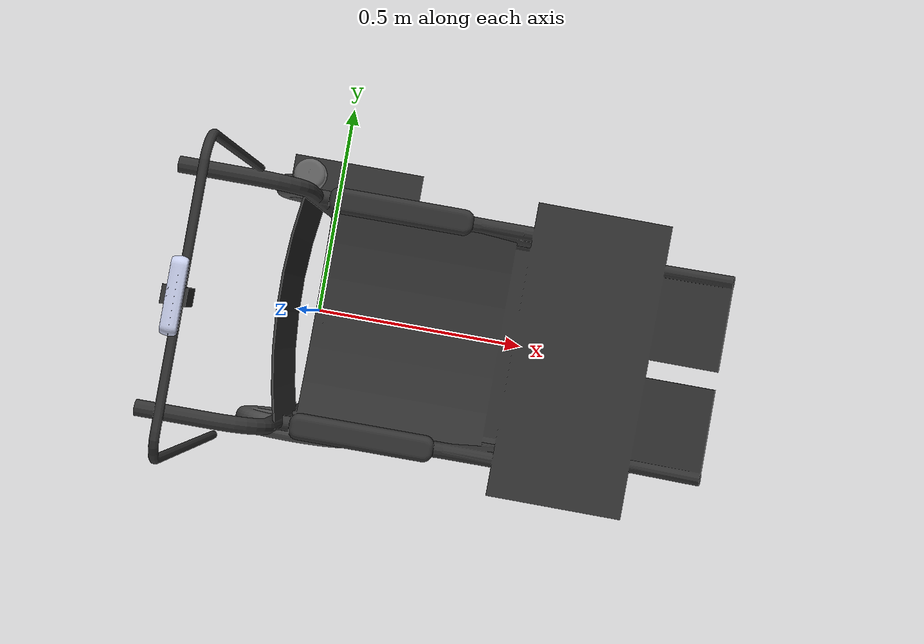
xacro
<?xml version="1.0"?>
<robot name="turtlebot3_burger" xmlns:xacro="http://ros.org/wiki/xacro">
  <xacro:include filename="$(find wheel_chair)/urdf/wheel_chair.gazebo.xacro" />

  <link
    name="base_link">
    <inertial>
      <origin
        xyz="0.367710115990865 0.00427594055759772 0.222806503300556"
        rpy="0 0 0" />
      <mass
        value="104.238834662291" />
      <inertia
        ixx="4.71175664250457"
        ixy="0.0385230868676068"
        ixz="1.0740814957226"
        iyy="7.70372211875449"
        iyz="0.0449177005185298"
        izz="4.26521836376027" />
    </inertial>
    <visual>
      <origin
        xyz="0 0 0"
        rpy="0 0 0" />
      <geometry>
        <mesh
          filename="package://wheel_chair/meshes/base_link.STL" />
      </geometry>
      <material
        name="">
        <color
          rgba="0.2 0.2 0.2 1" />
      </material>
    </visual>
    <collision>
      <origin
        xyz="0 0 0"
        rpy="0 0 0" />
      <geometry>
        <mesh
          filename="package://wheel_chair/meshes/base_link.STL" />
      </geometry>
    </collision>
  </link>

  <joint name="imu_joint" type="fixed">
    <parent link="base_link"/>
    <child link="imu_link"/>
    <origin xyz="-0.032 0 0.068" rpy="0 0 0"/>
  </joint>

  <link name="imu_link"/>

  <link
    name="left_big_wheel">
    <inertial>
      <origin
        xyz="8.32667268468867E-17 -0.0275 9.43689570931383E-16"
        rpy="0 0 0" />
      <mass
        value="3.19005851775017" />
      <inertia
        ixx="0.0222055020892376"
        ixy="2.73068863816006E-19"
        ixz="-2.79570503430672E-17"
        iyy="0.0429444812918596"
        iyz="-3.90098376880016E-20"
        izz="0.0222055020892377" />
    </inertial>
    <visual>
      <origin
        xyz="0 0 0"
        rpy="0 0 0" />
      <geometry>
        <mesh
          filename="package://wheel_chair/meshes/left_big_wheel.STL" />
      </geometry>
      <material
        name="">
        <color
          rgba="0.298039215686275 0.298039215686275 0.298039215686275 1" />
      </material>
    </visual>
    <collision>
      <origin
        xyz="0 0 0"
        rpy="0 0 0" />
      <geometry>
        <mesh
          filename="package://wheel_chair/meshes/left_big_wheel.STL" />
      </geometry>
    </collision>
  </link>
  <joint
    name="left_big_wheel_joint"
    type="continuous">
    <origin
      xyz="0 0.315 0"
      rpy="0 0 0" />
    <parent
      link="base_link" />
    <child
      link="left_big_wheel" />
    <axis
      xyz="0 -1 0" />
    <limit
      effort="1"
      velocity="1" />
  </joint>
  <link
    name="right_big_wheel">
    <inertial>
      <origin
        xyz="1.60982338570648E-15 0.0275 1.11022302462516E-15"
        rpy="0 0 0" />
      <mass
        value="3.19005851775018" />
      <inertia
        ixx="0.0222055020892377"
        ixy="-5.02793463534266E-19"
        ixz="-1.06280135567754E-17"
        iyy="0.0429444812918596"
        iyz="1.34367218703133E-19"
        izz="0.0222055020892377" />
    </inertial>
    <visual>
      <origin
        xyz="0 0 0"
        rpy="0 0 0" />
      <geometry>
        <mesh
          filename="package://wheel_chair/meshes/right_big_wheel.STL" />
      </geometry>
      <material
        name="">
        <color
          rgba="0.298039215686275 0.298039215686275 0.298039215686275 1" />
      </material>
    </visual>
    <collision>
      <origin
        xyz="0 0 0"
        rpy="0 0 0" />
      <geometry>
        <mesh
          filename="package://wheel_chair/meshes/right_big_wheel.STL" />
      </geometry>
    </collision>
  </link>
  <joint
    name="right_big_wheel_joint"
    type="continuous">
    <origin
      xyz="0 -0.315 0"
      rpy="0 0 0" />
    <parent
      link="base_link" />
    <child
      link="right_big_wheel" />
    <axis
      xyz="0 -1 0" />
    <limit
      effort="1"
      velocity="1" />
  </joint>
  <link
    name="left_small_wheel">
    <inertial>
      <origin
        xyz="-7.21644966006352E-16 -0.0400000000000002 0"
        rpy="0 0 0" />
      <mass
        value="1.31881639542862" />
      <inertia
        ixx="0.00307756206748821"
        ixy="-4.86196911723968E-19"
        ixz="1.29760768970133E-20"
        iyy="0.00569232821091254"
        iyz="1.99882167723138E-20"
        izz="0.00307756206748821" />
    </inertial>
    <visual>
      <origin
        xyz="0 0 0"
        rpy="0 0 0" />
      <geometry>
        <mesh
          filename="package://wheel_chair/meshes/left_small_wheel.STL" />
      </geometry>
      <material
        name="">
        <color
          rgba="0.298039215686275 0.298039215686275 0.298039215686275 1" />
      </material>
    </visual>
    <collision>
      <origin
        xyz="0 0 0"
        rpy="0 0 0" />
      <geometry>
        <mesh
          filename="package://wheel_chair/meshes/left_small_wheel.STL" />
      </geometry>
    </collision>
  </link>
  <joint
    name="left_small_wheel_joint"
    type="revolute">
    <origin
      xyz="0.64005 0.2835 -0.065"
      rpy="0 0 -0.0013615" />
    <parent
      link="base_link" />
    <child
      link="left_small_wheel" />
    <axis
      xyz="-0.0019131 1 0" />
    <limit
      lower="0"
      upper="0"
      effort="0"
      velocity="0" />
  </joint>
  <link
    name="right_smaal_wheel">
    <inertial>
      <origin
        xyz="0.000198873647039965 0.0399995056128514 2.22044604925031E-15"
        rpy="0 0 0" />
      <mass
        value="1.31881639542862" />
      <inertia
        ixx="0.00307762670242769"
        ixy="1.30000412990577E-05"
        ixz="-3.05847536861125E-19"
        iyy="0.00569226357597306"
        iyz="8.08608700453136E-20"
        izz="0.00307756206748821" />
    </inertial>
    <visual>
      <origin
        xyz="0 0 0"
        rpy="0 0 0" />
      <geometry>
        <mesh
          filename="package://wheel_chair/meshes/right_smaal_wheel.STL" />
      </geometry>
      <material
        name="">
        <color
          rgba="0.298039215686275 0.298039215686275 0.298039215686275 1" />
      </material>
    </visual>
    <collision>
      <origin
        xyz="0 0 0"
        rpy="0 0 0" />
      <geometry>
        <mesh
          filename="package://wheel_chair/meshes/right_smaal_wheel.STL" />
      </geometry>
    </collision>
  </link>
  <joint
    name="right_small_wheel_joint"
    type="revolute">
    <origin
      xyz="0.6398 -0.2835 -0.065"
      rpy="0 0 0" />
    <parent
      link="base_link" />
    <child
      link="right_smaal_wheel" />
    <axis
      xyz="0.0043627 0.99999 0" />
    <limit
      lower="0"
      upper="0"
      effort="0"
      velocity="0" />
  </joint>
  <link
    name="rp_laser_back">
    <inertial>
      <origin
        xyz="-0.00393393719392465 1.45541326387055E-05 -0.00550433759472346"
        rpy="0 0 0" />
      <mass
        value="0.165382757413928" />
      <inertia
        ixx="7.88186497400901E-05"
        ixy="4.81327415297136E-08"
        ixz="-1.82339073198479E-06"
        iyy="7.51902892774038E-05"
        iyz="-2.9420939238945E-08"
        izz="0.000109993288450695" />
    </inertial>
    <visual>
      <origin
        xyz="0 0 0"
        rpy="0 0 0" />
      <geometry>
        <mesh
          filename="package://wheel_chair/meshes/rp_laser_back.STL" />
      </geometry>
      <material
        name="">
        <color
          rgba="0.752941176470588 0.752941176470588 0.752941176470588 0.4" />
      </material>
    </visual>
    <collision>
      <origin
        xyz="0 0 0"
        rpy="0 0 0" />
      <geometry>
        <mesh
          filename="package://wheel_chair/meshes/rp_laser_back.STL" />
      </geometry>
    </collision>
  </link>
  <joint
    name="rp_laser_back_joint"
    type="fixed">
    <origin
      xyz="-0.048279 0.305 0.26099"
      rpy="0 0 -0.4" />
    <parent
      link="base_link" />
    <child
      link="rp_laser_back" />
    <axis
      xyz="0 0 0" />
  </joint>
  <link
    name="rp_laser_front">
    <inertial>
      <origin
        xyz="0.00386881875434386 8.69539989361567E-05 -0.00554963797433417"
        rpy="0 0 0" />
      <mass
        value="0.165382751635991" />
      <inertia
        ixx="7.88601133328312E-05"
        ixy="1.44763696263324E-07"
        ixz="2.18328573965282E-06"
        iyy="7.51953617715746E-05"
        iyz="8.61570136662877E-08"
        izz="0.000109946753058707" />
    </inertial>
    <visual>
      <origin
        xyz="0 0 0"
        rpy="0 0 0" />
      <geometry>
        <mesh
          filename="package://wheel_chair/meshes/rp_laser_front.STL" />
      </geometry>
      <material
        name="">
        <color
          rgba="0.752941176470588 0.752941176470588 0.752941176470588 0.4" />
      </material>
    </visual>
    <collision>
      <origin
        xyz="0 0 0"
        rpy="0 0 0" />
      <geometry>
        <mesh
          filename="package://wheel_chair/meshes/rp_laser_front.STL" />
      </geometry>
    </collision>
  </link>
  <joint
    name="rp_laser_front_joint"
    type="fixed">
    <origin
      xyz="0.72155 0.0046595 -0.074152"
      rpy="0 0 -0.0013615" />
    <parent
      link="base_link" />
    <child
      link="rp_laser_front" />
    <axis
      xyz="0 0 0" />
  </joint>
  <link
    name="camera_link">
    <inertial>
      <origin
        xyz="-0.0128303971236894 0.00026345822416235 0.00120890752799729"
        rpy="0 0 0" />
      <mass
        value="0.0247927922484064" />
      <inertia
        ixx="3.56506588599453E-05"
        ixy="-1.15721449744488E-08"
        ixz="-1.82266916058428E-07"
        iyy="2.84011177762109E-06"
        iyz="2.78716575004723E-08"
        izz="3.35091990190486E-05" />
    </inertial>
    <visual>
      <origin
        xyz="0 0 0"
        rpy="0 0 0" />
      <geometry>
        <mesh
          filename="package://wheel_chair/meshes/camera.STL" />
      </geometry>
      <material
        name="">
        <color
          rgba="0.792156862745098 0.819607843137255 0.933333333333333 1" />
      </material>
    </visual>
    <collision>
      <origin
        xyz="0 0 0"
        rpy="0 0 0" />
      <geometry>
        <mesh
          filename="package://wheel_chair/meshes/camera.STL" />
      </geometry>
    </collision>
  </link>
  <joint
    name="camera_joint"
    type="fixed">
    <origin
      xyz="-0.066986 -0.0039691 1.5345"
      rpy="0 0 0" />
    <parent
      link="base_link" />
    <child
      link="camera_link" />
    <axis
      xyz="0 0 0" />
    <limit
      lower="0"
      upper="0"
      effort="0"
      velocity="0" />
  </joint>

  <joint name="camera_depth_joint" type="fixed">
    <origin xyz="0 0 0" rpy="0 0 0" />
    <parent link="camera_link" />
    <child link="camera_depth_frame" />
  </joint>
  <link name="camera_depth_frame" />

  <joint name="camera_depth_optical_joint" type="fixed">
    <origin xyz="0 0 0" rpy="-1.57079632679 0 -1.57079632679" />
    <parent link="camera_depth_frame" />
    <child link="camera_depth_optical_frame" />
  </joint>
  <link name="camera_depth_optical_frame" />

  <!-- camera left IR joints and links -->
  <joint name="camera_infra1_joint" type="fixed">
    <origin xyz="0 0 0" rpy="0 0 0" />
    <parent link="camera_link" />
    <child link="camera_infra1_frame" />
  </joint>
  <link name="camera_infra1_frame" />

  <joint name="camera_infra1_optical_joint" type="fixed">
    <origin xyz="0 0 0" rpy="-1.57079632679 0 -1.57079632679" />
    <parent link="camera_infra1_frame" />
    <child link="camera_infra1_optical_frame" />
  </joint>
  <link name="camera_infra1_optical_frame" />

  <!-- camera right IR joints and links -->
  <joint name="camera_infra2_joint" type="fixed">
    <origin xyz="0 -0.095 0" rpy="0 0 0" />
    <parent link="camera_link" />
    <child link="camera_infra2_frame" />
  </joint>
  <link name="camera_infra2_frame" />

  <joint name="camera_infra2_optical_joint" type="fixed">
    <origin xyz="0 0 0" rpy="-1.57079632679 0 -1.57079632679" />
    <parent link="camera_infra2_frame" />
    <child link="camera_infra2_optical_frame" />
  </joint>
  <link name="camera_infra2_optical_frame" />

  <!-- camera color joints and links -->
  <joint name="camera_color_joint" type="fixed">
    <origin xyz="0 -0.059 0" rpy="0 0 0" />
    <parent link="camera_link" />
    <child link="camera_color_frame" />
  </joint>
  <link name="camera_color_frame" />

  <joint name="camera_color_optical_joint" type="fixed">
    <origin xyz="0 0 0" rpy="-1.57079632679 0 -1.57079632679" />
    <parent link="camera_color_frame" />
    <child link="camera_color_optical_frame" />
  </joint>
  <link name="camera_color_optical_frame" />

  <link name="camera_accel_frame" />
  <link name="camera_accel_optical_frame" />
  <link name="camera_gyro_frame" />
  <link name="camera_gyro_optical_frame" />
  <link name="camera_imu_optical_frame" />

  <!-- IMU -->
  <!-- see datasheet Revision 009, page 114 -->

  <joint name="camera_accel_joint" type="fixed">
    <origin xyz="-0.01602 -0.03022 +0.0074" rpy="0 0 0" />
    <parent link="camera_link" />
    <child link="camera_accel_frame" />
  </joint>

  <joint name="camera_accel_optical_joint" type="fixed">
    <origin xyz="0 0 0" rpy="-1.57 0 -1.57" />
    <parent link="camera_accel_frame" />
    <child link="camera_accel_optical_frame" />
  </joint>

  <joint name="camera_gyro_joint" type="fixed">
    <origin xyz="-0.01602 -0.03022 +0.0074" rpy="0 0 0" />
    <parent link="camera_link" />
    <child link="camera_gyro_frame" />
  </joint>

  <joint name="camera_gyro_optical_joint" type="fixed">
    <origin xyz="0 0 0" rpy="-1.57 0 -1.57" />
    <parent link="camera_gyro_frame" />
    <child link="camera_gyro_optical_frame" />
  </joint>

  <joint name="camera_imu_optical_joint" type="fixed">
    <origin xyz="0 0 0" rpy="0 0 0" />
    <parent link="camera_gyro_optical_frame" />
    <child link="camera_imu_optical_frame" />
  </joint>

</robot>
